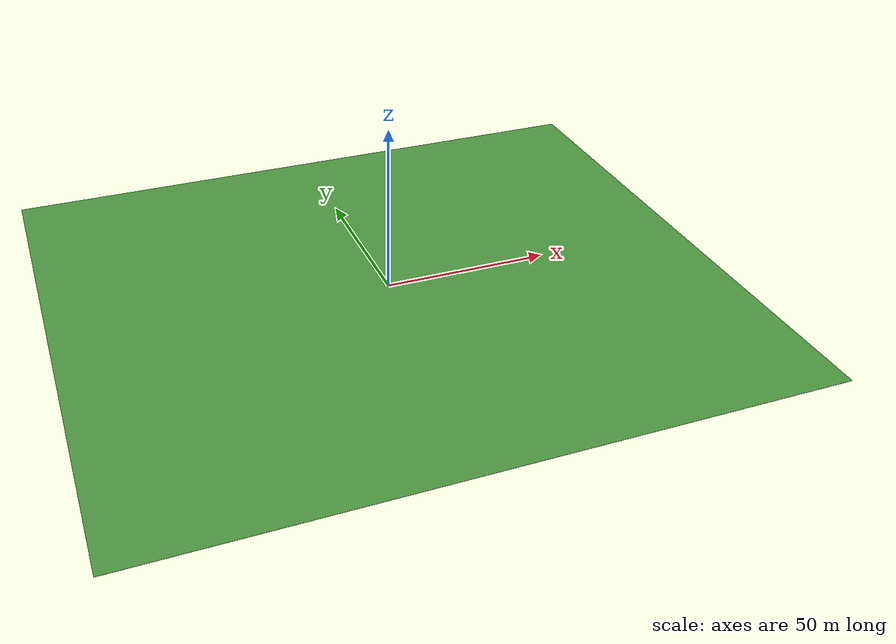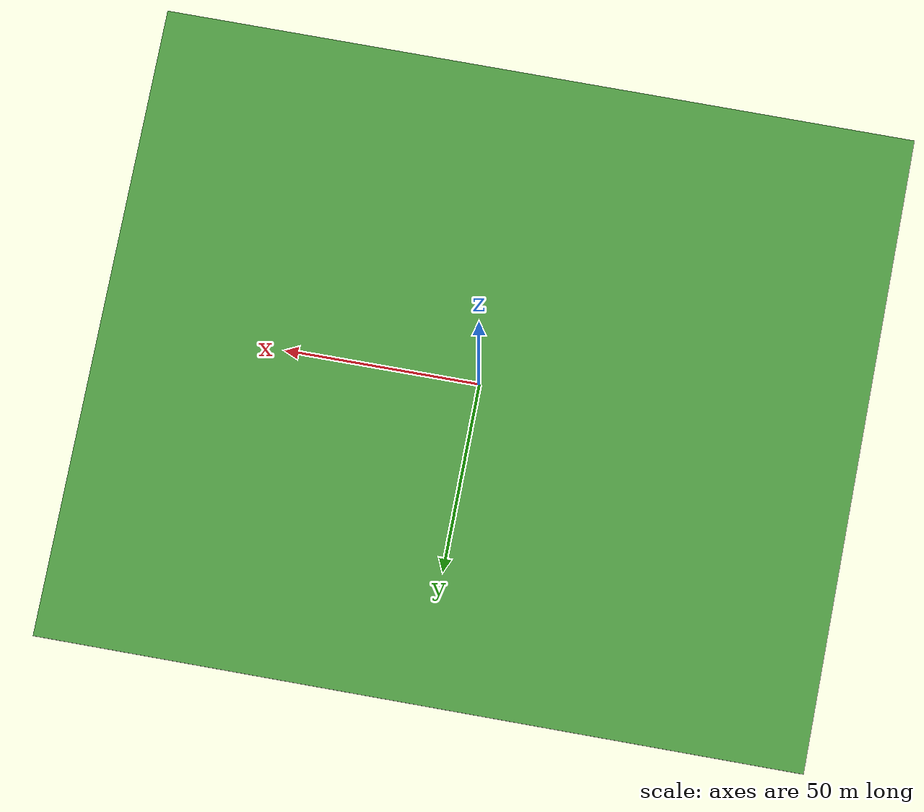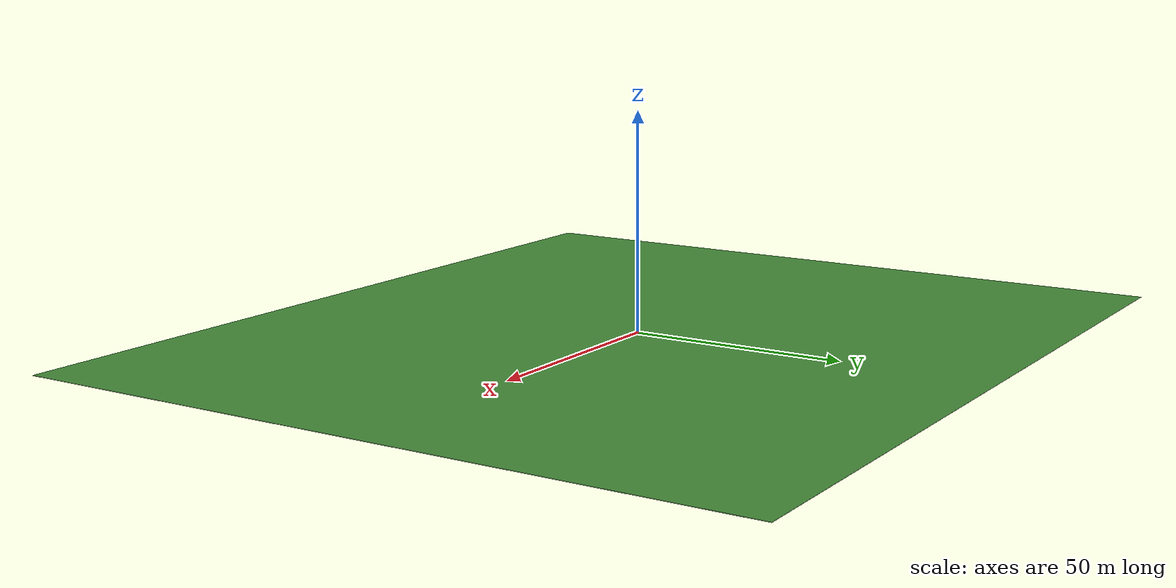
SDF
<?xml version="1.0" ?>
<sdf version="1.5">
  <model name="ki_plane">
    <static>true</static>
    <link name="link">
      <collision name="collision">
        <geometry>
          <box>
            <size>195 170 .1</size>
          </box>
        </geometry>
      </collision>
      <visual name="visual">
        <cast_shadows>false</cast_shadows>
        <geometry>
          <box>
            <size>195 170 .1</size>
          </box>
        </geometry>
        <material>
          <script>
            <uri>model://ki_plane/materials/scripts</uri>
            <uri>model://ki_plane/materials/textures</uri>
            <name>vrc/grass</name>
          </script>
        </material>
      </visual>
    </link>
  </model>
</sdf>
